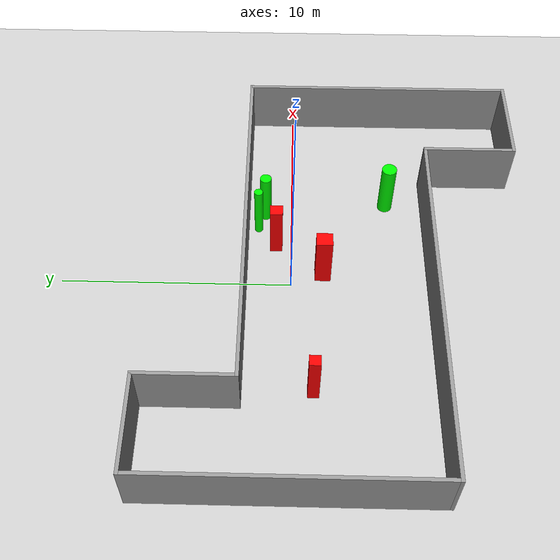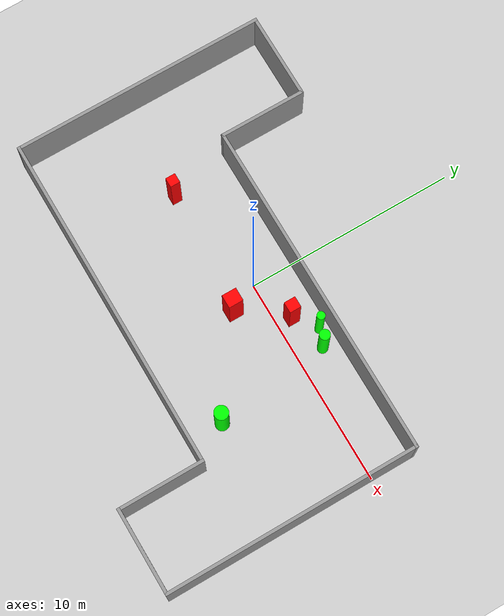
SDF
<sdf version="1.7">
 <world name="default">
  <light name="sun" type="directional">
   <pose>0 0 10 0 -0 0</pose>
   <diffuse>0.8 0.8 0.8 1</diffuse>
   <specular>0.2 0.2 0.2 1</specular>
   <attenuation>
    <range>1000</range>
    <constant>0.9</constant>
    <linear>0.01</linear>
    <quadratic>0.001</quadratic>
   </attenuation>
   <direction>-0.5 0.1 -0.9</direction>
   <spot><inner_angle>0</inner_angle><outer_angle>0</outer_angle><falloff>0</falloff></spot>
  </light>
  <model name="ground_plane">
   <static>1</static>
   <link name="link">
    <collision name="collision">
     <geometry><plane><normal>0 0 1</normal><size>100 100</size></plane></geometry>
     <surface>
      <contact><collide_bitmask>65535</collide_bitmask></contact>
      <friction><ode><mu>100</mu><mu2>50</mu2></ode></friction>
     </surface>
    </collision>
    <visual name="visual">
     <cast_shadows>0</cast_shadows>
     <geometry><plane><normal>0 0 1</normal><size>100 100</size></plane></geometry>
     <material>
      <script><uri>file://media/materials/scripts/gazebo.material</uri><name>Gazebo/Grey</name></script>
     </material>
    </visual>
   </link>
  </model>
  <gravity>0 0 -9.8</gravity>
  <magnetic_field>6e-06 2.3e-05 -4.2e-05</magnetic_field>
  <atmosphere type="adiabatic"/>
  <physics type="ode">
   <max_step_size>0.001</max_step_size>
   <real_time_factor>1</real_time_factor>
   <real_time_update_rate>1000</real_time_update_rate>
  </physics>
  <scene><ambient>0.4 0.4 0.4 1</ambient><background>0.7 0.7 0.7 1</background><shadows>1</shadows></scene>
  <spherical_coordinates>
   <surface_model>EARTH_WGS84</surface_model>
   <latitude_deg>0</latitude_deg>
   <longitude_deg>0</longitude_deg>
   <elevation>0</elevation>
   <heading_deg>0</heading_deg>
  </spherical_coordinates>
  <model name="my_base_walls">
   <link name="Wall_13">
    <collision name="Wall_13_Collision">
     <geometry><box><size>12.15 0.15 2.5</size></box></geometry>
     <pose>0 0 1.25 0 -0 0</pose>
    </collision>
    <visual name="Wall_13_Visual">
     <pose>0 0 1.25 0 -0 0</pose>
     <geometry><box><size>12.15 0.15 2.5</size></box></geometry>
     <material>
      <script><uri>file://media/materials/scripts/gazebo.material</uri><name>Gazebo/Grey</name></script>
      <ambient>1 1 1 1</ambient>
     </material>
     <meta><layer>0</layer></meta>
    </visual>
    <pose>10 -2 0 0 -0 1.5708</pose>
   </link>
   <link name="Wall_15">
    <collision name="Wall_15_Collision">
     <geometry><box><size>16.15 0.15 2.5</size></box></geometry>
     <pose>0 0 1.25 0 -0 0</pose>
    </collision>
    <visual name="Wall_15_Visual">
     <pose>0 0 1.25 0 -0 0</pose>
     <geometry><box><size>16.15 0.15 2.5</size></box></geometry>
     <material>
      <script><uri>file://media/materials/scripts/gazebo.material</uri><name>Gazebo/Grey</name></script>
      <ambient>1 1 1 1</ambient>
     </material>
     <meta><layer>0</layer></meta>
    </visual>
    <pose>2 4 0 0 -0 3.14159</pose>
   </link>
   <link name="Wall_17">
    <collision name="Wall_17_Collision">
     <geometry><box><size>4.15 0.15 2.5</size></box></geometry>
     <pose>0 0 1.25 0 -0 0</pose>
    </collision>
    <visual name="Wall_17_Visual">
     <pose>0 0 1.25 0 -0 0</pose>
     <geometry><box><size>4.15 0.15 2.5</size></box></geometry>
     <material>
      <script><uri>file://media/materials/scripts/gazebo.material</uri><name>Gazebo/Grey</name></script>
      <ambient>1 1 1 1</ambient>
     </material>
     <meta><layer>0</layer></meta>
    </visual>
    <pose>6 -6 0 0 -0 -1.5708</pose>
   </link>
   <link name="Wall_19">
    <collision name="Wall_19_Collision">
     <geometry><box><size>12.15 0.15 2.5</size></box></geometry>
     <pose>0 0 1.25 0 -0 0</pose>
    </collision>
    <visual name="Wall_19_Visual">
     <pose>0 0 1.25 0 -0 0</pose>
     <geometry><box><size>12.15 0.15 2.5</size></box></geometry>
     <material>
      <script><uri>file://media/materials/scripts/gazebo.material</uri><name>Gazebo/Grey</name></script>
      <ambient>1 1 1 1</ambient>
     </material>
     <meta><layer>0</layer></meta>
    </visual>
    <pose>-10 2 0 0 -0 1.5708</pose>
   </link>
   <link name="Wall_21">
    <collision name="Wall_21_Collision">
     <geometry><box><size>4.15 0.15 2.5</size></box></geometry>
     <pose>0 0 1.25 0 -0 0</pose>
    </collision>
    <visual name="Wall_21_Visual">
     <pose>0 0 1.25 0 -0 0</pose>
     <geometry><box><size>4.15 0.15 2.5</size></box></geometry>
     <material>
      <script><uri>file://media/materials/scripts/gazebo.material</uri><name>Gazebo/Grey</name></script>
      <ambient>1 1 1 1</ambient>
     </material>
     <meta><layer>0</layer></meta>
    </visual>
    <pose>-8 8 0 0 -0 0</pose>
   </link>
   <link name="Wall_23">
    <collision name="Wall_23_Collision">
     <geometry><box><size>4.15 0.15 2.5</size></box></geometry>
     <pose>0 0 1.25 0 -0 0</pose>
    </collision>
    <visual name="Wall_23_Visual">
     <pose>0 0 1.25 0 -0 0</pose>
     <geometry><box><size>4.15 0.15 2.5</size></box></geometry>
     <material>
      <script><uri>file://media/materials/scripts/gazebo.material</uri><name>Gazebo/Grey</name></script>
      <ambient>1 1 1 1</ambient>
     </material>
     <meta><layer>0</layer></meta>
    </visual>
    <pose>-6 6 0 0 -0 -1.5708</pose>
   </link>
   <link name="Wall_25">
    <collision name="Wall_25_Collision">
     <geometry><box><size>4.15 0.15 2.5</size></box></geometry>
     <pose>0 0 1.25 0 -0 0</pose>
    </collision>
    <visual name="Wall_25_Visual">
     <pose>0 0 1.25 0 -0 0</pose>
     <geometry><box><size>4.15 0.15 2.5</size></box></geometry>
     <material>
      <script><uri>file://media/materials/scripts/gazebo.material</uri><name>Gazebo/Grey</name></script>
      <ambient>1 1 1 1</ambient>
     </material>
     <meta><layer>0</layer></meta>
    </visual>
    <pose>8 -8 0 0 -0 0</pose>
   </link>
   <link name="Wall_9">
    <collision name="Wall_9_Collision">
     <geometry><box><size>16.15 0.15 2.5</size></box></geometry>
     <pose>0 0 1.25 0 -0 0</pose>
    </collision>
    <visual name="Wall_9_Visual">
     <pose>0 0 1.25 0 -0 0</pose>
     <geometry><box><size>16.15 0.15 2.5</size></box></geometry>
     <material>
      <script><uri>file://media/materials/scripts/gazebo.material</uri><name>Gazebo/Grey</name></script>
      <ambient>1 1 1 1</ambient>
     </material>
     <meta><layer>0</layer></meta>
    </visual>
    <pose>-2 -4 0 0 -0 3.14159</pose>
   </link>
   <static>1</static>
   <pose>-0 -2 0 0 -0 0</pose>
  </model>
  <model name="cylinder1">
   <static>1</static>
   <link name="link">
    <inertial>
     <mass>1</mass>
     <inertia><ixx>0.5</ixx><ixy>0</ixy><ixz>0</ixz><iyy>0.5</iyy><iyz>0</iyz><izz>1</izz></inertia>
    </inertial>
    <collision name="collision">
     <geometry><cylinder><radius>0.24967538185864496</radius><length>2.5</length></cylinder></geometry>
    </collision>
    <visual name="visual">
     <geometry><cylinder><radius>0.24967538185864496</radius><length>2.5</length></cylinder></geometry>
     <material>
      <ambient>0 1 0 1</ambient>
      <diffuse>0 1 0 1</diffuse>
      <specular>0.1 0.1 0.1 1</specular>
      <emissive>0 0 0 0</emissive>
     </material>
    </visual>
   </link>
   <pose>3.9696228313703887 1.1839362497548906 1.25 0 0 0</pose>
  </model>
  <model name="cylinder2">
   <static>1</static>
   <link name="link">
    <inertial>
     <mass>1</mass>
     <inertia><ixx>0.5</ixx><ixy>0</ixy><ixz>0</ixz><iyy>0.5</iyy><iyz>0</iyz><izz>1</izz></inertia>
    </inertial>
    <collision name="collision">
     <geometry><cylinder><radius>0.3292401271444294</radius><length>2.5</length></cylinder></geometry>
    </collision>
    <visual name="visual">
     <geometry><cylinder><radius>0.3292401271444294</radius><length>2.5</length></cylinder></geometry>
     <material>
      <ambient>0 1 0 1</ambient>
      <diffuse>0 1 0 1</diffuse>
      <specular>0.1 0.1 0.1 1</specular>
      <emissive>0 0 0 0</emissive>
     </material>
    </visual>
   </link>
   <pose>4.64418219986656 -4.301377232729039 1.25 0 0 0</pose>
  </model>
  <model name="cylinder3">
   <static>1</static>
   <link name="link">
    <inertial>
     <mass>1</mass>
     <inertia><ixx>0.5</ixx><ixy>0</ixy><ixz>0</ixz><iyy>0.5</iyy><iyz>0</iyz><izz>1</izz></inertia>
    </inertial>
    <collision name="collision">
     <geometry><cylinder><radius>0.18901770045257213</radius><length>2.5</length></cylinder></geometry>
    </collision>
    <visual name="visual">
     <geometry><cylinder><radius>0.18901770045257213</radius><length>2.5</length></cylinder></geometry>
     <material>
      <ambient>0 1 0 1</ambient>
      <diffuse>0 1 0 1</diffuse>
      <specular>0.1 0.1 0.1 1</specular>
      <emissive>0 0 0 0</emissive>
     </material>
    </visual>
   </link>
   <pose>3.161728376755354 1.4788638497532292 1.25 0 0 0</pose>
  </model>
  <model name="box1">
   <static>1</static>
   <link name="link">
    <inertial>
     <mass>1</mass>
     <inertia><ixx>0.083</ixx><ixy>0</ixy><ixz>0</ixz><iyy>0.083</iyy><iyz>0</iyz><izz>0.083</izz></inertia>
    </inertial>
    <collision name="collision">
     <geometry><box><size>0.4585531513258242 0.46947885923409316 2.5</size></box></geometry>
    </collision>
    <visual name="visual">
     <geometry><box><size>0.4585531513258242 0.46947885923409316 2.5</size></box></geometry>
     <material>
      <ambient>1 0 0 1</ambient>
      <diffuse>1 0 0 1</diffuse>
      <specular>0.1 0.1 0.1 1</specular>
      <emissive>0 0 0 0</emissive>
     </material>
    </visual>
    <sensor name="my_contact" type="contact">
     <contact><collision>box_collision</collision><topic>__default_topic__</topic></contact>
    </sensor>
   </link>
   <pose>-5.308257703423102 -0.9432763121342234 1.25 0 0 0</pose>
  </model>
  <model name="box2">
   <static>1</static>
   <link name="link">
    <inertial>
     <mass>1</mass>
     <inertia><ixx>0.083</ixx><ixy>0</ixy><ixz>0</ixz><iyy>0.083</iyy><iyz>0</iyz><izz>0.083</izz></inertia>
    </inertial>
    <collision name="collision">
     <geometry><box><size>0.5193197416096682 0.5460595935803894 2.5</size></box></geometry>
    </collision>
    <visual name="visual">
     <geometry><box><size>0.5193197416096682 0.5460595935803894 2.5</size></box></geometry>
     <material>
      <ambient>1 0 0 1</ambient>
      <diffuse>1 0 0 1</diffuse>
      <specular>0.1 0.1 0.1 1</specular>
      <emissive>0 0 0 0</emissive>
     </material>
    </visual>
    <sensor name="my_contact" type="contact">
     <contact><collision>box_collision</collision><topic>__default_topic__</topic></contact>
    </sensor>
   </link>
   <pose>2.1458163259542147 0.6752253892104925 1.25 0 0 0</pose>
  </model>
  <model name="box3">
   <static>1</static>
   <link name="link">
    <inertial>
     <mass>1</mass>
     <inertia><ixx>0.083</ixx><ixy>0</ixy><ixz>0</ixz><iyy>0.083</iyy><iyz>0</iyz><izz>0.083</izz></inertia>
    </inertial>
    <collision name="collision">
     <geometry><box><size>0.6341480119028226 0.692337368457622 2.5</size></box></geometry>
    </collision>
    <visual name="visual">
     <geometry><box><size>0.6341480119028226 0.692337368457622 2.5</size></box></geometry>
     <material>
      <ambient>1 0 0 1</ambient>
      <diffuse>1 0 0 1</diffuse>
      <specular>0.1 0.1 0.1 1</specular>
      <emissive>0 0 0 0</emissive>
     </material>
    </visual>
    <sensor name="my_contact" type="contact">
     <contact><collision>box_collision</collision><topic>__default_topic__</topic></contact>
    </sensor>
   </link>
   <pose>0.584838904663946 -1.3783146272308375 1.25 0 0 0</pose>
  </model>
 </world>
</sdf>
